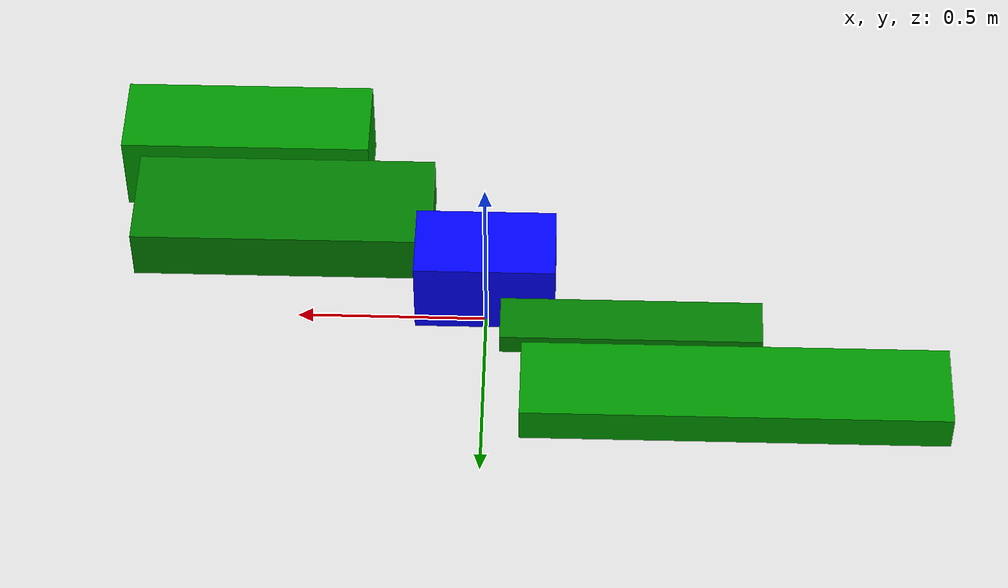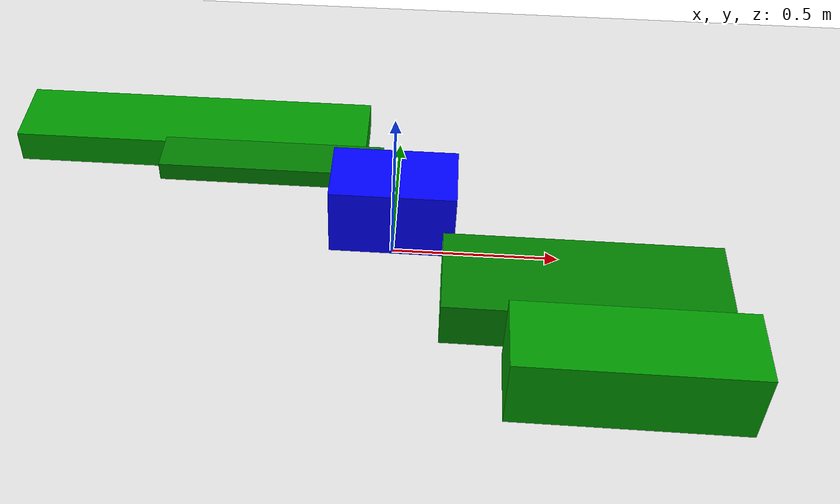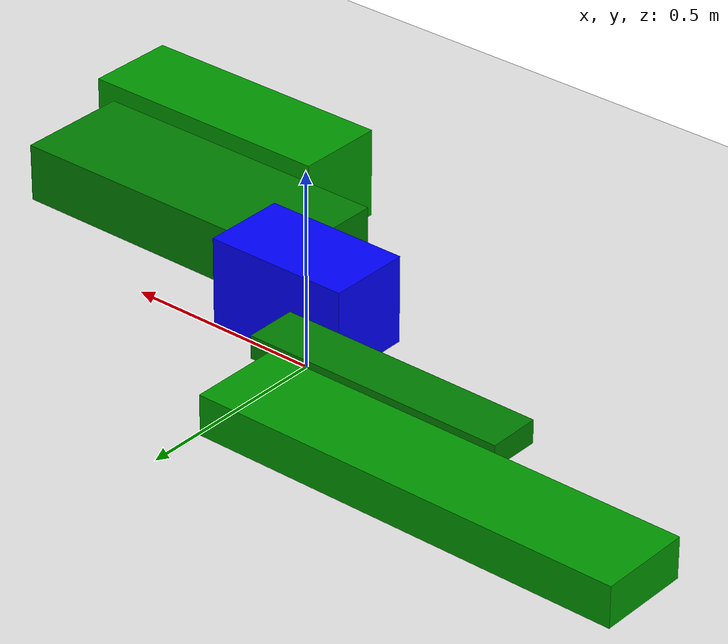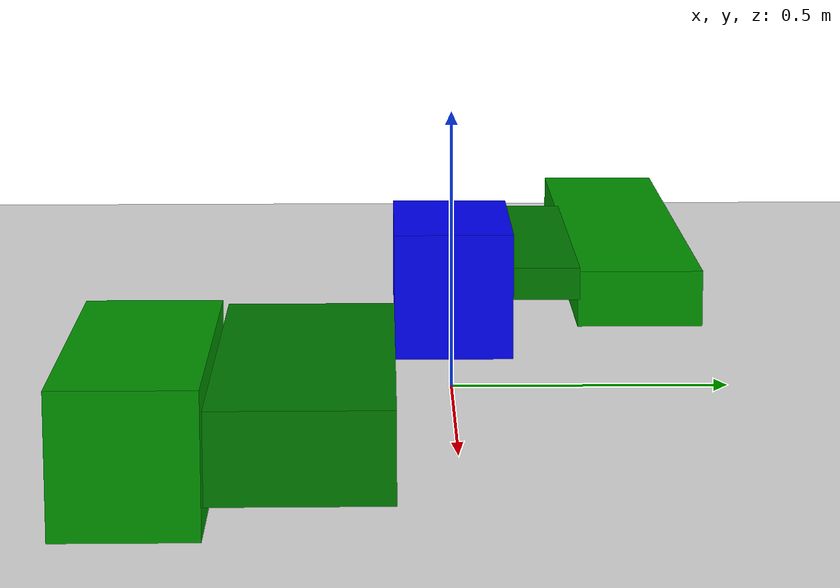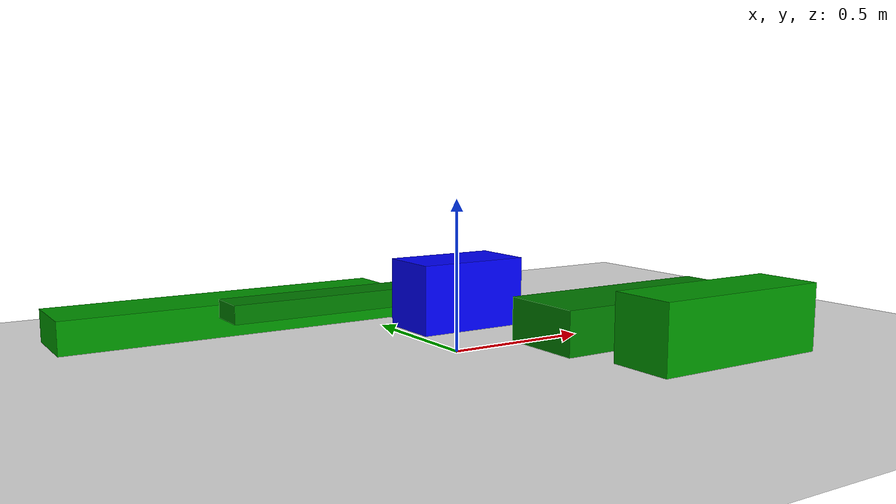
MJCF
<mujoco>
    <worldbody>
    <light diffuse=".5 .5 .5" pos="0 0 3" dir="0 0 -1"/>
    <geom type="plane" size="5 5 0.1" rgba=".9 0.9 0.9 1"/>
    <body name="main body" pos="0 0 .2">
        <joint type="free"/>
        <geom type="box" size="0.1823618432185498 0.10347852472478945 0.10960618824937188" rgba="0 0 1 1" mass="1"/>
        <site name="marker" pos="0 0 0" size="0.05"/>
        <site name="robot_center" pos="0 0 0" size="0.01"/>
        <body name="left_leg1" pos="-0.38 0.16888101435630432 -0.02040289132823906">
            <joint name="left_leg1_joint" type="hinge" axis="0 1 0" pos="0 0 0"/>
            <geom type="box" size="0.337457078141294 0.06540248963151486 0.029186847566066994" rgba="0 .5 0 1" mass="1"/>
            <body name="left_leg2" pos="-0.2664028669818799 0.1802838713985488 -0.04">
                <joint name="left_leg2_joint" type="hinge" axis="0 1 0" pos="0 0 0"/>
                <geom type="box" size="0.5475043629076538 0.11488138176703391 0.05111184958501502" rgba="0 .6 0 1" mass="1"/>
            </body>
        </body>
        <body name="right_leg1" pos="0.5473671382621346 -0.2475361944180854 -0.0892995557841021">
            <joint name="right_leg1_joint" type="hinge" axis="0 1 0" pos="0 0 0"/>
            <geom type="box" size="0.39775380587863474 0.14405766969329595 0.0733246844244113" rgba="0 .5 0 1" mass="1"/>
            <body name="right_leg2" pos="0.11462637862201615 -0.2582541661075433 -0.010591158288174191">
                <joint name="right_leg2_joint" type="hinge" axis="0 1 0" pos="0 0 0"/>
                <geom type="box" size="0.33252293255678567 0.11419649641424737 0.1271797091608704" rgba="0 .6 0 1" mass="1"/>
            </body>
        </body>
    </body>
    </worldbody>
    <sensor>
        <framepos objtype="site" objname="marker"/>
        <velocimeter name="robot_velocity" site="robot_center"/>
    </sensor>
    <actuator>
        <position joint="left_leg1_joint" kp="10"/>
        <position joint="left_leg2_joint" kp="10"/>
        <position joint="right_leg1_joint" kp="10"/>
        <position joint="right_leg2_joint" kp="10"/>
    </actuator>
</mujoco>
